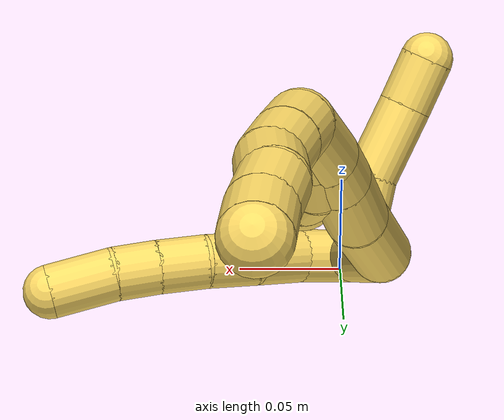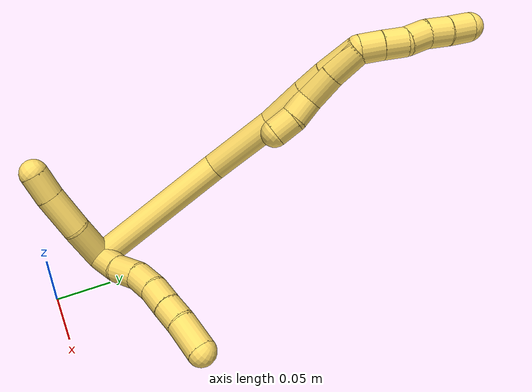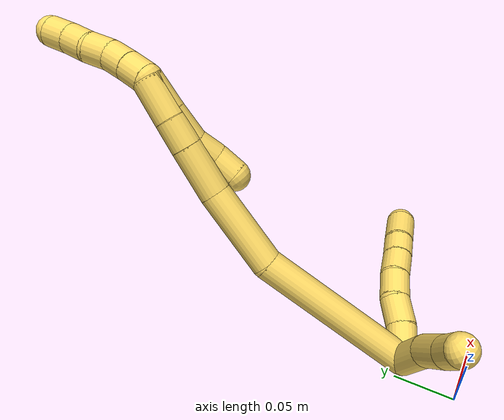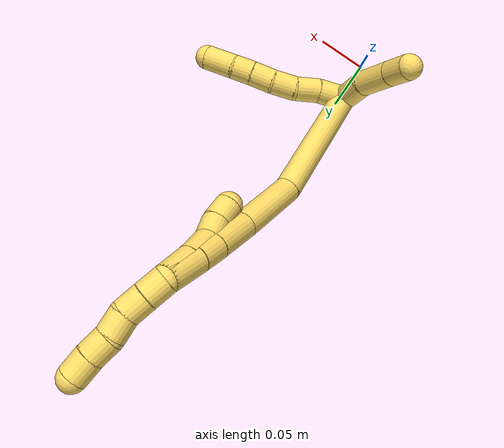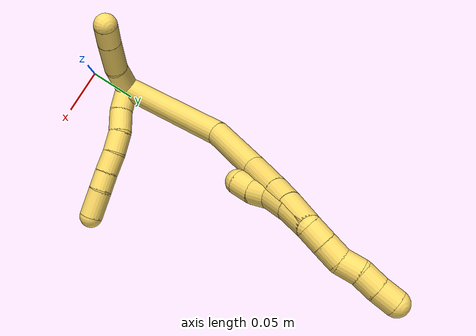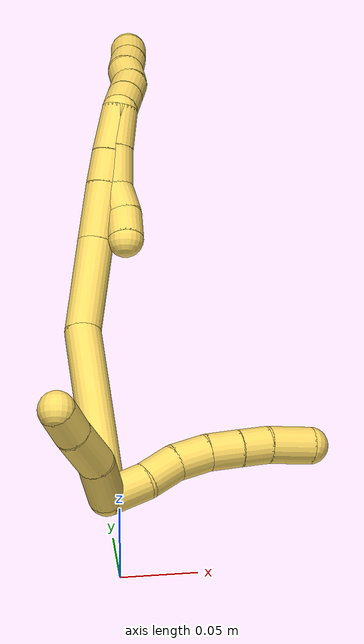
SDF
<sdf version="1.7">
 <world name="default">
  <model name="5">
   <static>0</static>
   <link name="5">
    <collision name="collision-cylinder-e_1_2_8">
     <pose>0.011132 0.006196 0.00616 -0.788342 0.905357 -0.399207</pose>
     <geometry><cylinder><radius>0.0125</radius><length>0.028302</length></cylinder></geometry>
     <surface>
      <friction><ode><mu>1.16</mu><mu2>1.16</mu2><slip1>0</slip1><slip2>0</slip2></ode></friction>
      <contact><ode><kp>1e+06</kp><kd>1</kd><max_vel>0</max_vel><min_depth>0.001</min_depth></ode></contact>
     </surface>
    </collision>
    <visual name="visual-cylinder-e_1_2_8">
     <pose>0.011132 0.006196 0.00616 -0.788342 0.905357 -0.399207</pose>
     <geometry><cylinder><radius>0.0125</radius><length>0.028302</length></cylinder></geometry>
     <material><ambient>1 0.858824 0.4 1</ambient></material>
    </visual>
    <collision name="collision-cylinder-e_2_8_9">
     <pose>0.030228 0.018559 0.019568 -0.70492 0.696823 -0.265632</pose>
     <geometry><cylinder><radius>0.0125</radius><length>0.024819</length></cylinder></geometry>
     <surface>
      <friction><ode><mu>1.16</mu><mu2>1.16</mu2><slip1>0</slip1><slip2>0</slip2></ode></friction>
      <contact><ode><kp>1e+06</kp><kd>1</kd><max_vel>0</max_vel><min_depth>0.001</min_depth></ode></contact>
     </surface>
    </collision>
    <visual name="visual-cylinder-e_2_8_9">
     <pose>0.030228 0.018559 0.019568 -0.70492 0.696823 -0.265632</pose>
     <geometry><cylinder><radius>0.0125</radius><length>0.024819</length></cylinder></geometry>
     <material><ambient>1 0.858824 0.4 1</ambient></material>
    </visual>
    <collision name="collision-cylinder-e_3_9_10">
     <pose>0.047608 0.030478 0.031126 -0.927877 0.918805 -0.485309</pose>
     <geometry><cylinder><radius>0.0125</radius><length>0.023692</length></cylinder></geometry>
     <surface>
      <friction><ode><mu>1.16</mu><mu2>1.16</mu2><slip1>0</slip1><slip2>0</slip2></ode></friction>
      <contact><ode><kp>1e+06</kp><kd>1</kd><max_vel>0</max_vel><min_depth>0.001</min_depth></ode></contact>
     </surface>
    </collision>
    <visual name="visual-cylinder-e_3_9_10">
     <pose>0.047608 0.030478 0.031126 -0.927877 0.918805 -0.485309</pose>
     <geometry><cylinder><radius>0.0125</radius><length>0.023692</length></cylinder></geometry>
     <material><ambient>1 0.858824 0.4 1</ambient></material>
    </visual>
    <collision name="collision-cylinder-e_4_10_11">
     <pose>0.066414 0.041972 0.037748 -1.18788 0.987997 -0.697583</pose>
     <geometry><cylinder><radius>0.0125</radius><length>0.022493</length></cylinder></geometry>
     <surface>
      <friction><ode><mu>1.16</mu><mu2>1.16</mu2><slip1>0</slip1><slip2>0</slip2></ode></friction>
      <contact><ode><kp>1e+06</kp><kd>1</kd><max_vel>0</max_vel><min_depth>0.001</min_depth></ode></contact>
     </surface>
    </collision>
    <visual name="visual-cylinder-e_4_10_11">
     <pose>0.066414 0.041972 0.037748 -1.18788 0.987997 -0.697583</pose>
     <geometry><cylinder><radius>0.0125</radius><length>0.022493</length></cylinder></geometry>
     <material><ambient>1 0.858824 0.4 1</ambient></material>
    </visual>
    <collision name="collision-cylinder-e_5_11_12">
     <pose>0.083975 0.053251 0.042144 -1.21096 0.944079 -0.6794</pose>
     <geometry><cylinder><radius>0.0125</radius><length>0.020174</length></cylinder></geometry>
     <surface>
      <friction><ode><mu>1.16</mu><mu2>1.16</mu2><slip1>0</slip1><slip2>0</slip2></ode></friction>
      <contact><ode><kp>1e+06</kp><kd>1</kd><max_vel>0</max_vel><min_depth>0.001</min_depth></ode></contact>
     </surface>
    </collision>
    <visual name="visual-cylinder-e_5_11_12">
     <pose>0.083975 0.053251 0.042144 -1.21096 0.944079 -0.6794</pose>
     <geometry><cylinder><radius>0.0125</radius><length>0.020174</length></cylinder></geometry>
     <material><ambient>1 0.858824 0.4 1</ambient></material>
    </visual>
    <collision name="collision-cylinder-e_6_12_6">
     <pose>0.104067 0.068214 0.045594 -1.4268 0.896742 -0.789002</pose>
     <geometry><cylinder><radius>0.0125</radius><length>0.03052</length></cylinder></geometry>
     <surface>
      <friction><ode><mu>1.16</mu><mu2>1.16</mu2><slip1>0</slip1><slip2>0</slip2></ode></friction>
      <contact><ode><kp>1e+06</kp><kd>1</kd><max_vel>0</max_vel><min_depth>0.001</min_depth></ode></contact>
     </surface>
    </collision>
    <visual name="visual-cylinder-e_6_12_6">
     <pose>0.104067 0.068214 0.045594 -1.4268 0.896742 -0.789002</pose>
     <geometry><cylinder><radius>0.0125</radius><length>0.03052</length></cylinder></geometry>
     <material><ambient>1 0.858824 0.4 1</ambient></material>
    </visual>
    <collision name="collision-cylinder-e_1_2_13">
     <pose>0.002293 -0.018013 0.006486 1.22517 0.119212 0.083829</pose>
     <geometry><cylinder><radius>0.0125</radius><length>0.038564</length></cylinder></geometry>
     <surface>
      <friction><ode><mu>1.16</mu><mu2>1.16</mu2><slip1>0</slip1><slip2>0</slip2></ode></friction>
      <contact><ode><kp>1e+06</kp><kd>1</kd><max_vel>0</max_vel><min_depth>0.001</min_depth></ode></contact>
     </surface>
    </collision>
    <visual name="visual-cylinder-e_1_2_13">
     <pose>0.002293 -0.018013 0.006486 1.22517 0.119212 0.083829</pose>
     <geometry><cylinder><radius>0.0125</radius><length>0.038564</length></cylinder></geometry>
     <material><ambient>1 0.858824 0.4 1</ambient></material>
    </visual>
    <collision name="collision-cylinder-e_2_13_14">
     <pose>0.002657 -0.053692 0.017868 1.30047 -0.104878 -0.079798</pose>
     <geometry><cylinder><radius>0.0125</radius><length>0.036865</length></cylinder></geometry>
     <surface>
      <friction><ode><mu>1.16</mu><mu2>1.16</mu2><slip1>0</slip1><slip2>0</slip2></ode></friction>
      <contact><ode><kp>1e+06</kp><kd>1</kd><max_vel>0</max_vel><min_depth>0.001</min_depth></ode></contact>
     </surface>
    </collision>
    <visual name="visual-cylinder-e_2_13_14">
     <pose>0.002657 -0.053692 0.017868 1.30047 -0.104878 -0.079798</pose>
     <geometry><cylinder><radius>0.0125</radius><length>0.036865</length></cylinder></geometry>
     <material><ambient>1 0.858824 0.4 1</ambient></material>
    </visual>
    <collision name="collision-cylinder-e_3_14_5">
     <pose>-0.000486 -0.082753 0.027189 1.2003 -0.098946 -0.067744</pose>
     <geometry><cylinder><radius>0.0125</radius><length>0.024571</length></cylinder></geometry>
     <surface>
      <friction><ode><mu>1.16</mu><mu2>1.16</mu2><slip1>0</slip1><slip2>0</slip2></ode></friction>
      <contact><ode><kp>1e+06</kp><kd>1</kd><max_vel>0</max_vel><min_depth>0.001</min_depth></ode></contact>
     </surface>
    </collision>
    <visual name="visual-cylinder-e_3_14_5">
     <pose>-0.000486 -0.082753 0.027189 1.2003 -0.098946 -0.067744</pose>
     <geometry><cylinder><radius>0.0125</radius><length>0.024571</length></cylinder></geometry>
     <material><ambient>1 0.858824 0.4 1</ambient></material>
    </visual>
    <collision name="collision-cylinder-e_1_2_15">
     <pose>-0.014473 0.015049 0.062956 -0.234631 -0.219977 0.026029</pose>
     <geometry><cylinder><radius>0.0125</radius><length>0.132655</length></cylinder></geometry>
     <surface>
      <friction><ode><mu>1.16</mu><mu2>1.16</mu2><slip1>0</slip1><slip2>0</slip2></ode></friction>
      <contact><ode><kp>1e+06</kp><kd>1</kd><max_vel>0</max_vel><min_depth>0.001</min_depth></ode></contact>
     </surface>
    </collision>
    <visual name="visual-cylinder-e_1_2_15">
     <pose>-0.014473 0.015049 0.062956 -0.234631 -0.219977 0.026029</pose>
     <geometry><cylinder><radius>0.0125</radius><length>0.132655</length></cylinder></geometry>
     <material><ambient>1 0.858824 0.4 1</ambient></material>
    </visual>
    <collision name="collision-cylinder-e_2_15_16">
     <pose>-0.026418 0.034523 0.159202 -0.132187 0.075131 -0.004975</pose>
     <geometry><cylinder><radius>0.0125</radius><length>0.067356</length></cylinder></geometry>
     <surface>
      <friction><ode><mu>1.16</mu><mu2>1.16</mu2><slip1>0</slip1><slip2>0</slip2></ode></friction>
      <contact><ode><kp>1e+06</kp><kd>1</kd><max_vel>0</max_vel><min_depth>0.001</min_depth></ode></contact>
     </surface>
    </collision>
    <visual name="visual-cylinder-e_2_15_16">
     <pose>-0.026418 0.034523 0.159202 -0.132187 0.075131 -0.004975</pose>
     <geometry><cylinder><radius>0.0125</radius><length>0.067356</length></cylinder></geometry>
     <material><ambient>1 0.858824 0.4 1</ambient></material>
    </visual>
    <collision name="collision-cylinder-e_3_16_17">
     <pose>-0.021228 0.039361 0.213069 -0.019959 0.12863 -0.001285</pose>
     <geometry><cylinder><radius>0.0125</radius><length>0.041506</length></cylinder></geometry>
     <surface>
      <friction><ode><mu>1.16</mu><mu2>1.16</mu2><slip1>0</slip1><slip2>0</slip2></ode></friction>
      <contact><ode><kp>1e+06</kp><kd>1</kd><max_vel>0</max_vel><min_depth>0.001</min_depth></ode></contact>
     </surface>
    </collision>
    <visual name="visual-cylinder-e_3_16_17">
     <pose>-0.021228 0.039361 0.213069 -0.019959 0.12863 -0.001285</pose>
     <geometry><cylinder><radius>0.0125</radius><length>0.041506</length></cylinder></geometry>
     <material><ambient>1 0.858824 0.4 1</ambient></material>
    </visual>
    <collision name="collision-cylinder-e_4_17_18">
     <pose>-0.016751 0.040247 0.245424 -0.040392 0.152833 -0.003093</pose>
     <geometry><cylinder><radius>0.0125</radius><length>0.023853</length></cylinder></geometry>
     <surface>
      <friction><ode><mu>1.16</mu><mu2>1.16</mu2><slip1>0</slip1><slip2>0</slip2></ode></friction>
      <contact><ode><kp>1e+06</kp><kd>1</kd><max_vel>0</max_vel><min_depth>0.001</min_depth></ode></contact>
     </surface>
    </collision>
    <visual name="visual-cylinder-e_4_17_18">
     <pose>-0.016751 0.040247 0.245424 -0.040392 0.152833 -0.003093</pose>
     <geometry><cylinder><radius>0.0125</radius><length>0.023853</length></cylinder></geometry>
     <material><ambient>1 0.858824 0.4 1</ambient></material>
    </visual>
    <collision name="collision-cylinder-e_5_18_1">
     <pose>-0.011915 0.042278 0.27418 -0.091326 0.175329 -0.008032</pose>
     <geometry><cylinder><radius>0.0125</radius><length>0.03463</length></cylinder></geometry>
     <surface>
      <friction><ode><mu>1.16</mu><mu2>1.16</mu2><slip1>0</slip1><slip2>0</slip2></ode></friction>
      <contact><ode><kp>1e+06</kp><kd>1</kd><max_vel>0</max_vel><min_depth>0.001</min_depth></ode></contact>
     </surface>
    </collision>
    <visual name="visual-cylinder-e_5_18_1">
     <pose>-0.011915 0.042278 0.27418 -0.091326 0.175329 -0.008032</pose>
     <geometry><cylinder><radius>0.0125</radius><length>0.03463</length></cylinder></geometry>
     <material><ambient>1 0.858824 0.4 1</ambient></material>
    </visual>
    <collision name="collision-cylinder-e_1_1_19">
     <pose>-0.01017 0.043175 0.276138 3.0978 -0.08463 -2.18682</pose>
     <geometry><cylinder><radius>0.0125</radius><length>0.030178</length></cylinder></geometry>
     <surface>
      <friction><ode><mu>1.16</mu><mu2>1.16</mu2><slip1>0</slip1><slip2>0</slip2></ode></friction>
      <contact><ode><kp>1e+06</kp><kd>1</kd><max_vel>0</max_vel><min_depth>0.001</min_depth></ode></contact>
     </surface>
    </collision>
    <visual name="visual-cylinder-e_1_1_19">
     <pose>-0.01017 0.043175 0.276138 3.0978 -0.08463 -2.18682</pose>
     <geometry><cylinder><radius>0.0125</radius><length>0.030178</length></cylinder></geometry>
     <material><ambient>1 0.858824 0.4 1</ambient></material>
    </visual>
    <collision name="collision-cylinder-e_2_19_20">
     <pose>-0.011557 0.043047 0.246938 -3.1042 -0.007856 0.414112</pose>
     <geometry><cylinder><radius>0.0125</radius><length>0.028379</length></cylinder></geometry>
     <surface>
      <friction><ode><mu>1.16</mu><mu2>1.16</mu2><slip1>0</slip1><slip2>0</slip2></ode></friction>
      <contact><ode><kp>1e+06</kp><kd>1</kd><max_vel>0</max_vel><min_depth>0.001</min_depth></ode></contact>
     </surface>
    </collision>
    <visual name="visual-cylinder-e_2_19_20">
     <pose>-0.011557 0.043047 0.246938 -3.1042 -0.007856 0.414112</pose>
     <geometry><cylinder><radius>0.0125</radius><length>0.028379</length></cylinder></geometry>
     <material><ambient>1 0.858824 0.4 1</ambient></material>
    </visual>
    <collision name="collision-cylinder-e_3_20_21">
     <pose>-0.008362 0.043487 0.222793 3.13252 0.320299 3.08543</pose>
     <geometry><cylinder><radius>0.0125</radius><length>0.021</length></cylinder></geometry>
     <surface>
      <friction><ode><mu>1.16</mu><mu2>1.16</mu2><slip1>0</slip1><slip2>0</slip2></ode></friction>
      <contact><ode><kp>1e+06</kp><kd>1</kd><max_vel>0</max_vel><min_depth>0.001</min_depth></ode></contact>
     </surface>
    </collision>
    <visual name="visual-cylinder-e_3_20_21">
     <pose>-0.008362 0.043487 0.222793 3.13252 0.320299 3.08543</pose>
     <geometry><cylinder><radius>0.0125</radius><length>0.021</length></cylinder></geometry>
     <material><ambient>1 0.858824 0.4 1</ambient></material>
    </visual>
    <collision name="collision-cylinder-e_4_21_4">
     <pose>-0.003601 0.041382 0.202913 2.9411 0.142836 1.23649</pose>
     <geometry><cylinder><radius>0.0125</radius><length>0.020442</length></cylinder></geometry>
     <surface>
      <friction><ode><mu>1.16</mu><mu2>1.16</mu2><slip1>0</slip1><slip2>0</slip2></ode></friction>
      <contact><ode><kp>1e+06</kp><kd>1</kd><max_vel>0</max_vel><min_depth>0.001</min_depth></ode></contact>
     </surface>
    </collision>
    <visual name="visual-cylinder-e_4_21_4">
     <pose>-0.003601 0.041382 0.202913 2.9411 0.142836 1.23649</pose>
     <geometry><cylinder><radius>0.0125</radius><length>0.020442</length></cylinder></geometry>
     <material><ambient>1 0.858824 0.4 1</ambient></material>
    </visual>
    <collision name="collision-cylinder-e_1_1_22">
     <pose>-0.009261 0.050189 0.298871 -0.689284 -0.036671 0.013165</pose>
     <geometry><cylinder><radius>0.0125</radius><length>0.02</length></cylinder></geometry>
     <surface>
      <friction><ode><mu>1.16</mu><mu2>1.16</mu2><slip1>0</slip1><slip2>0</slip2></ode></friction>
      <contact><ode><kp>1e+06</kp><kd>1</kd><max_vel>0</max_vel><min_depth>0.001</min_depth></ode></contact>
     </surface>
    </collision>
    <visual name="visual-cylinder-e_1_1_22">
     <pose>-0.009261 0.050189 0.298871 -0.689284 -0.036671 0.013165</pose>
     <geometry><cylinder><radius>0.0125</radius><length>0.02</length></cylinder></geometry>
     <material><ambient>1 0.858824 0.4 1</ambient></material>
    </visual>
    <collision name="collision-cylinder-e_2_22_23">
     <pose>-0.010176 0.06319 0.314035 -0.728246 -0.054849 0.020908</pose>
     <geometry><cylinder><radius>0.0125</radius><length>0.02</length></cylinder></geometry>
     <surface>
      <friction><ode><mu>1.16</mu><mu2>1.16</mu2><slip1>0</slip1><slip2>0</slip2></ode></friction>
      <contact><ode><kp>1e+06</kp><kd>1</kd><max_vel>0</max_vel><min_depth>0.001</min_depth></ode></contact>
     </surface>
    </collision>
    <visual name="visual-cylinder-e_2_22_23">
     <pose>-0.010176 0.06319 0.314035 -0.728246 -0.054849 0.020908</pose>
     <geometry><cylinder><radius>0.0125</radius><length>0.02</length></cylinder></geometry>
     <material><ambient>1 0.858824 0.4 1</ambient></material>
    </visual>
    <collision name="collision-cylinder-e_3_23_24">
     <pose>-0.014083 0.075217 0.329217 -0.60816 -0.342545 0.108452</pose>
     <geometry><cylinder><radius>0.0125</radius><length>0.02</length></cylinder></geometry>
     <surface>
      <friction><ode><mu>1.16</mu><mu2>1.16</mu2><slip1>0</slip1><slip2>0</slip2></ode></friction>
      <contact><ode><kp>1e+06</kp><kd>1</kd><max_vel>0</max_vel><min_depth>0.001</min_depth></ode></contact>
     </surface>
    </collision>
    <visual name="visual-cylinder-e_3_23_24">
     <pose>-0.014083 0.075217 0.329217 -0.60816 -0.342545 0.108452</pose>
     <geometry><cylinder><radius>0.0125</radius><length>0.02</length></cylinder></geometry>
     <material><ambient>1 0.858824 0.4 1</ambient></material>
    </visual>
    <collision name="collision-cylinder-e_4_24_25">
     <pose>-0.018777 0.087513 0.344047 -0.772131 -0.133925 0.054503</pose>
     <geometry><cylinder><radius>0.0125</radius><length>0.02</length></cylinder></geometry>
     <surface>
      <friction><ode><mu>1.16</mu><mu2>1.16</mu2><slip1>0</slip1><slip2>0</slip2></ode></friction>
      <contact><ode><kp>1e+06</kp><kd>1</kd><max_vel>0</max_vel><min_depth>0.001</min_depth></ode></contact>
     </surface>
    </collision>
    <visual name="visual-cylinder-e_4_24_25">
     <pose>-0.018777 0.087513 0.344047 -0.772131 -0.133925 0.054503</pose>
     <geometry><cylinder><radius>0.0125</radius><length>0.02</length></cylinder></geometry>
     <material><ambient>1 0.858824 0.4 1</ambient></material>
    </visual>
    <collision name="collision-cylinder-e_5_25_3">
     <pose>-0.022362 0.101031 0.358312 -0.744762 -0.22693 0.088964</pose>
     <geometry><cylinder><radius>0.0125</radius><length>0.02</length></cylinder></geometry>
     <surface>
      <friction><ode><mu>1.16</mu><mu2>1.16</mu2><slip1>0</slip1><slip2>0</slip2></ode></friction>
      <contact><ode><kp>1e+06</kp><kd>1</kd><max_vel>0</max_vel><min_depth>0.001</min_depth></ode></contact>
     </surface>
    </collision>
    <visual name="visual-cylinder-e_5_25_3">
     <pose>-0.022362 0.101031 0.358312 -0.744762 -0.22693 0.088964</pose>
     <geometry><cylinder><radius>0.0125</radius><length>0.02</length></cylinder></geometry>
     <material><ambient>1 0.858824 0.4 1</ambient></material>
    </visual>
    <collision name="collision-sphere-3">
     <pose>-0.024612 0.107635 0.365476 0 -0 0</pose>
     <geometry><sphere><radius>0.0125</radius></sphere></geometry>
     <surface>
      <friction><ode><mu>1.16</mu><mu2>1.16</mu2><slip1>0</slip1><slip2>0</slip2></ode></friction>
      <contact><ode><kp>1e+06</kp><kd>1</kd><max_vel>0</max_vel><min_depth>0.001</min_depth></ode></contact>
     </surface>
    </collision>
    <visual name="visual-sphere-3">
     <pose>-0.024612 0.107635 0.365476 0 -0 0</pose>
     <geometry><sphere><radius>0.0125</radius></sphere></geometry>
     <material><ambient>1 0.858824 0.4 1</ambient></material>
    </visual>
    <collision name="collision-sphere-25">
     <pose>-0.020112 0.094427 0.351148 0 -0 0</pose>
     <geometry><sphere><radius>0.0125</radius></sphere></geometry>
     <surface>
      <friction><ode><mu>1.16</mu><mu2>1.16</mu2><slip1>0</slip1><slip2>0</slip2></ode></friction>
      <contact><ode><kp>1e+06</kp><kd>1</kd><max_vel>0</max_vel><min_depth>0.001</min_depth></ode></contact>
     </surface>
    </collision>
    <visual name="visual-sphere-25">
     <pose>-0.020112 0.094427 0.351148 0 -0 0</pose>
     <geometry><sphere><radius>0.0125</radius></sphere></geometry>
     <material><ambient>1 0.858824 0.4 1</ambient></material>
    </visual>
    <collision name="collision-sphere-24">
     <pose>-0.017442 0.080599 0.336947 0 -0 0</pose>
     <geometry><sphere><radius>0.0125</radius></sphere></geometry>
     <surface>
      <friction><ode><mu>1.16</mu><mu2>1.16</mu2><slip1>0</slip1><slip2>0</slip2></ode></friction>
      <contact><ode><kp>1e+06</kp><kd>1</kd><max_vel>0</max_vel><min_depth>0.001</min_depth></ode></contact>
     </surface>
    </collision>
    <visual name="visual-sphere-24">
     <pose>-0.017442 0.080599 0.336947 0 -0 0</pose>
     <geometry><sphere><radius>0.0125</radius></sphere></geometry>
     <material><ambient>1 0.858824 0.4 1</ambient></material>
    </visual>
    <collision name="collision-sphere-23">
     <pose>-0.010724 0.069835 0.321487 0 -0 0</pose>
     <geometry><sphere><radius>0.0125</radius></sphere></geometry>
     <surface>
      <friction><ode><mu>1.16</mu><mu2>1.16</mu2><slip1>0</slip1><slip2>0</slip2></ode></friction>
      <contact><ode><kp>1e+06</kp><kd>1</kd><max_vel>0</max_vel><min_depth>0.001</min_depth></ode></contact>
     </surface>
    </collision>
    <visual name="visual-sphere-23">
     <pose>-0.010724 0.069835 0.321487 0 -0 0</pose>
     <geometry><sphere><radius>0.0125</radius></sphere></geometry>
     <material><ambient>1 0.858824 0.4 1</ambient></material>
    </visual>
    <collision name="collision-sphere-22">
     <pose>-0.009628 0.056544 0.306583 0 -0 0</pose>
     <geometry><sphere><radius>0.0125</radius></sphere></geometry>
     <surface>
      <friction><ode><mu>1.16</mu><mu2>1.16</mu2><slip1>0</slip1><slip2>0</slip2></ode></friction>
      <contact><ode><kp>1e+06</kp><kd>1</kd><max_vel>0</max_vel><min_depth>0.001</min_depth></ode></contact>
     </surface>
    </collision>
    <visual name="visual-sphere-22">
     <pose>-0.009628 0.056544 0.306583 0 -0 0</pose>
     <geometry><sphere><radius>0.0125</radius></sphere></geometry>
     <material><ambient>1 0.858824 0.4 1</ambient></material>
    </visual>
    <collision name="collision-sphere-4">
     <pose>-0.002146 0.039367 0.192999 0 -0 0</pose>
     <geometry><sphere><radius>0.0125</radius></sphere></geometry>
     <surface>
      <friction><ode><mu>1.16</mu><mu2>1.16</mu2><slip1>0</slip1><slip2>0</slip2></ode></friction>
      <contact><ode><kp>1e+06</kp><kd>1</kd><max_vel>0</max_vel><min_depth>0.001</min_depth></ode></contact>
     </surface>
    </collision>
    <visual name="visual-sphere-4">
     <pose>-0.002146 0.039367 0.192999 0 -0 0</pose>
     <geometry><sphere><radius>0.0125</radius></sphere></geometry>
     <material><ambient>1 0.858824 0.4 1</ambient></material>
    </visual>
    <collision name="collision-sphere-21">
     <pose>-0.005056 0.043397 0.212827 0 -0 0</pose>
     <geometry><sphere><radius>0.0125</radius></sphere></geometry>
     <surface>
      <friction><ode><mu>1.16</mu><mu2>1.16</mu2><slip1>0</slip1><slip2>0</slip2></ode></friction>
      <contact><ode><kp>1e+06</kp><kd>1</kd><max_vel>0</max_vel><min_depth>0.001</min_depth></ode></contact>
     </surface>
    </collision>
    <visual name="visual-sphere-21">
     <pose>-0.005056 0.043397 0.212827 0 -0 0</pose>
     <geometry><sphere><radius>0.0125</radius></sphere></geometry>
     <material><ambient>1 0.858824 0.4 1</ambient></material>
    </visual>
    <collision name="collision-sphere-20">
     <pose>-0.011668 0.043577 0.232759 0 -0 0</pose>
     <geometry><sphere><radius>0.0125</radius></sphere></geometry>
     <surface>
      <friction><ode><mu>1.16</mu><mu2>1.16</mu2><slip1>0</slip1><slip2>0</slip2></ode></friction>
      <contact><ode><kp>1e+06</kp><kd>1</kd><max_vel>0</max_vel><min_depth>0.001</min_depth></ode></contact>
     </surface>
    </collision>
    <visual name="visual-sphere-20">
     <pose>-0.011668 0.043577 0.232759 0 -0 0</pose>
     <geometry><sphere><radius>0.0125</radius></sphere></geometry>
     <material><ambient>1 0.858824 0.4 1</ambient></material>
    </visual>
    <collision name="collision-sphere-12">
     <pose>0.092145 0.058788 0.044227 0 -0 0</pose>
     <geometry><sphere><radius>0.0125</radius></sphere></geometry>
     <surface>
      <friction><ode><mu>1.16</mu><mu2>1.16</mu2><slip1>0</slip1><slip2>0</slip2></ode></friction>
      <contact><ode><kp>1e+06</kp><kd>1</kd><max_vel>0</max_vel><min_depth>0.001</min_depth></ode></contact>
     </surface>
    </collision>
    <visual name="visual-sphere-12">
     <pose>0.092145 0.058788 0.044227 0 -0 0</pose>
     <geometry><sphere><radius>0.0125</radius></sphere></geometry>
     <material><ambient>1 0.858824 0.4 1</ambient></material>
    </visual>
    <collision name="collision-sphere-11">
     <pose>0.075805 0.047714 0.040061 0 -0 0</pose>
     <geometry><sphere><radius>0.0125</radius></sphere></geometry>
     <surface>
      <friction><ode><mu>1.16</mu><mu2>1.16</mu2><slip1>0</slip1><slip2>0</slip2></ode></friction>
      <contact><ode><kp>1e+06</kp><kd>1</kd><max_vel>0</max_vel><min_depth>0.001</min_depth></ode></contact>
     </surface>
    </collision>
    <visual name="visual-sphere-11">
     <pose>0.075805 0.047714 0.040061 0 -0 0</pose>
     <geometry><sphere><radius>0.0125</radius></sphere></geometry>
     <material><ambient>1 0.858824 0.4 1</ambient></material>
    </visual>
    <collision name="collision-sphere-10">
     <pose>0.057024 0.036231 0.035435 0 -0 0</pose>
     <geometry><sphere><radius>0.0125</radius></sphere></geometry>
     <surface>
      <friction><ode><mu>1.16</mu><mu2>1.16</mu2><slip1>0</slip1><slip2>0</slip2></ode></friction>
      <contact><ode><kp>1e+06</kp><kd>1</kd><max_vel>0</max_vel><min_depth>0.001</min_depth></ode></contact>
     </surface>
    </collision>
    <visual name="visual-sphere-10">
     <pose>0.057024 0.036231 0.035435 0 -0 0</pose>
     <geometry><sphere><radius>0.0125</radius></sphere></geometry>
     <material><ambient>1 0.858824 0.4 1</ambient></material>
    </visual>
    <collision name="collision-sphere-9">
     <pose>0.038192 0.024725 0.026817 0 -0 0</pose>
     <geometry><sphere><radius>0.0125</radius></sphere></geometry>
     <surface>
      <friction><ode><mu>1.16</mu><mu2>1.16</mu2><slip1>0</slip1><slip2>0</slip2></ode></friction>
      <contact><ode><kp>1e+06</kp><kd>1</kd><max_vel>0</max_vel><min_depth>0.001</min_depth></ode></contact>
     </surface>
    </collision>
    <visual name="visual-sphere-9">
     <pose>0.038192 0.024725 0.026817 0 -0 0</pose>
     <geometry><sphere><radius>0.0125</radius></sphere></geometry>
     <material><ambient>1 0.858824 0.4 1</ambient></material>
    </visual>
    <collision name="collision-sphere-2">
     <geometry><sphere><radius>0.0125</radius></sphere></geometry>
     <surface>
      <friction><ode><mu>1.16</mu><mu2>1.16</mu2><slip1>0</slip1><slip2>0</slip2></ode></friction>
      <contact><ode><kp>1e+06</kp><kd>1</kd><max_vel>0</max_vel><min_depth>0.001</min_depth></ode></contact>
     </surface>
    </collision>
    <visual name="visual-sphere-2">
     <geometry><sphere><radius>0.0125</radius></sphere></geometry>
     <material><ambient>1 0.858824 0.4 1</ambient></material>
    </visual>
    <collision name="collision-sphere-19">
     <pose>-0.011445 0.042516 0.261117 0 -0 0</pose>
     <geometry><sphere><radius>0.0125</radius></sphere></geometry>
     <surface>
      <friction><ode><mu>1.16</mu><mu2>1.16</mu2><slip1>0</slip1><slip2>0</slip2></ode></friction>
      <contact><ode><kp>1e+06</kp><kd>1</kd><max_vel>0</max_vel><min_depth>0.001</min_depth></ode></contact>
     </surface>
    </collision>
    <visual name="visual-sphere-19">
     <pose>-0.011445 0.042516 0.261117 0 -0 0</pose>
     <geometry><sphere><radius>0.0125</radius></sphere></geometry>
     <material><ambient>1 0.858824 0.4 1</ambient></material>
    </visual>
    <collision name="collision-sphere-8">
     <pose>0.022264 0.012392 0.012319 0 -0 0</pose>
     <geometry><sphere><radius>0.0125</radius></sphere></geometry>
     <surface>
      <friction><ode><mu>1.16</mu><mu2>1.16</mu2><slip1>0</slip1><slip2>0</slip2></ode></friction>
      <contact><ode><kp>1e+06</kp><kd>1</kd><max_vel>0</max_vel><min_depth>0.001</min_depth></ode></contact>
     </surface>
    </collision>
    <visual name="visual-sphere-8">
     <pose>0.022264 0.012392 0.012319 0 -0 0</pose>
     <geometry><sphere><radius>0.0125</radius></sphere></geometry>
     <material><ambient>1 0.858824 0.4 1</ambient></material>
    </visual>
    <collision name="collision-sphere-6">
     <pose>0.11599 0.07764 0.04696 0 -0 0</pose>
     <geometry><sphere><radius>0.0125</radius></sphere></geometry>
     <surface>
      <friction><ode><mu>1.16</mu><mu2>1.16</mu2><slip1>0</slip1><slip2>0</slip2></ode></friction>
      <contact><ode><kp>1e+06</kp><kd>1</kd><max_vel>0</max_vel><min_depth>0.001</min_depth></ode></contact>
     </surface>
    </collision>
    <visual name="visual-sphere-6">
     <pose>0.11599 0.07764 0.04696 0 -0 0</pose>
     <geometry><sphere><radius>0.0125</radius></sphere></geometry>
     <material><ambient>1 0.858824 0.4 1</ambient></material>
    </visual>
    <collision name="collision-sphere-13">
     <pose>0.004586 -0.036026 0.012972 0 -0 0</pose>
     <geometry><sphere><radius>0.0125</radius></sphere></geometry>
     <surface>
      <friction><ode><mu>1.16</mu><mu2>1.16</mu2><slip1>0</slip1><slip2>0</slip2></ode></friction>
      <contact><ode><kp>1e+06</kp><kd>1</kd><max_vel>0</max_vel><min_depth>0.001</min_depth></ode></contact>
     </surface>
    </collision>
    <visual name="visual-sphere-13">
     <pose>0.004586 -0.036026 0.012972 0 -0 0</pose>
     <geometry><sphere><radius>0.0125</radius></sphere></geometry>
     <material><ambient>1 0.858824 0.4 1</ambient></material>
    </visual>
    <collision name="collision-sphere-14">
     <pose>0.000727 -0.071357 0.022763 0 -0 0</pose>
     <geometry><sphere><radius>0.0125</radius></sphere></geometry>
     <surface>
      <friction><ode><mu>1.16</mu><mu2>1.16</mu2><slip1>0</slip1><slip2>0</slip2></ode></friction>
      <contact><ode><kp>1e+06</kp><kd>1</kd><max_vel>0</max_vel><min_depth>0.001</min_depth></ode></contact>
     </surface>
    </collision>
    <visual name="visual-sphere-14">
     <pose>0.000727 -0.071357 0.022763 0 -0 0</pose>
     <geometry><sphere><radius>0.0125</radius></sphere></geometry>
     <material><ambient>1 0.858824 0.4 1</ambient></material>
    </visual>
    <collision name="collision-sphere-5">
     <pose>-0.0017 -0.094149 0.031616 0 -0 0</pose>
     <geometry><sphere><radius>0.0125</radius></sphere></geometry>
     <surface>
      <friction><ode><mu>1.16</mu><mu2>1.16</mu2><slip1>0</slip1><slip2>0</slip2></ode></friction>
      <contact><ode><kp>1e+06</kp><kd>1</kd><max_vel>0</max_vel><min_depth>0.001</min_depth></ode></contact>
     </surface>
    </collision>
    <visual name="visual-sphere-5">
     <pose>-0.0017 -0.094149 0.031616 0 -0 0</pose>
     <geometry><sphere><radius>0.0125</radius></sphere></geometry>
     <material><ambient>1 0.858824 0.4 1</ambient></material>
    </visual>
    <collision name="collision-sphere-15">
     <pose>-0.028946 0.030097 0.125912 0 -0 0</pose>
     <geometry><sphere><radius>0.0125</radius></sphere></geometry>
     <surface>
      <friction><ode><mu>1.16</mu><mu2>1.16</mu2><slip1>0</slip1><slip2>0</slip2></ode></friction>
      <contact><ode><kp>1e+06</kp><kd>1</kd><max_vel>0</max_vel><min_depth>0.001</min_depth></ode></contact>
     </surface>
    </collision>
    <visual name="visual-sphere-15">
     <pose>-0.028946 0.030097 0.125912 0 -0 0</pose>
     <geometry><sphere><radius>0.0125</radius></sphere></geometry>
     <material><ambient>1 0.858824 0.4 1</ambient></material>
    </visual>
    <collision name="collision-sphere-16">
     <pose>-0.02389 0.03895 0.192492 0 -0 0</pose>
     <geometry><sphere><radius>0.0125</radius></sphere></geometry>
     <surface>
      <friction><ode><mu>1.16</mu><mu2>1.16</mu2><slip1>0</slip1><slip2>0</slip2></ode></friction>
      <contact><ode><kp>1e+06</kp><kd>1</kd><max_vel>0</max_vel><min_depth>0.001</min_depth></ode></contact>
     </surface>
    </collision>
    <visual name="visual-sphere-16">
     <pose>-0.02389 0.03895 0.192492 0 -0 0</pose>
     <geometry><sphere><radius>0.0125</radius></sphere></geometry>
     <material><ambient>1 0.858824 0.4 1</ambient></material>
    </visual>
    <collision name="collision-sphere-17">
     <pose>-0.018566 0.039771 0.233647 0 -0 0</pose>
     <geometry><sphere><radius>0.0125</radius></sphere></geometry>
     <surface>
      <friction><ode><mu>1.16</mu><mu2>1.16</mu2><slip1>0</slip1><slip2>0</slip2></ode></friction>
      <contact><ode><kp>1e+06</kp><kd>1</kd><max_vel>0</max_vel><min_depth>0.001</min_depth></ode></contact>
     </surface>
    </collision>
    <visual name="visual-sphere-17">
     <pose>-0.018566 0.039771 0.233647 0 -0 0</pose>
     <geometry><sphere><radius>0.0125</radius></sphere></geometry>
     <material><ambient>1 0.858824 0.4 1</ambient></material>
    </visual>
    <collision name="collision-sphere-18">
     <pose>-0.014935 0.040723 0.257202 0 -0 0</pose>
     <geometry><sphere><radius>0.0125</radius></sphere></geometry>
     <surface>
      <friction><ode><mu>1.16</mu><mu2>1.16</mu2><slip1>0</slip1><slip2>0</slip2></ode></friction>
      <contact><ode><kp>1e+06</kp><kd>1</kd><max_vel>0</max_vel><min_depth>0.001</min_depth></ode></contact>
     </surface>
    </collision>
    <visual name="visual-sphere-18">
     <pose>-0.014935 0.040723 0.257202 0 -0 0</pose>
     <geometry><sphere><radius>0.0125</radius></sphere></geometry>
     <material><ambient>1 0.858824 0.4 1</ambient></material>
    </visual>
    <collision name="collision-sphere-1">
     <pose>-0.008894 0.043833 0.291159 0 -0 0</pose>
     <geometry><sphere><radius>0.0125</radius></sphere></geometry>
     <surface>
      <friction><ode><mu>1.16</mu><mu2>1.16</mu2><slip1>0</slip1><slip2>0</slip2></ode></friction>
      <contact><ode><kp>1e+06</kp><kd>1</kd><max_vel>0</max_vel><min_depth>0.001</min_depth></ode></contact>
     </surface>
    </collision>
    <visual name="visual-sphere-1">
     <pose>-0.008894 0.043833 0.291159 0 -0 0</pose>
     <geometry><sphere><radius>0.0125</radius></sphere></geometry>
     <material><ambient>1 0.858824 0.4 1</ambient></material>
    </visual>
    <inertial>
     <pose>0.001282 0.027943 0.141853 0 -0 0</pose>
     <mass>0.75</mass>
     <inertia><ixx>0.000274</ixx><ixy>0</ixy><ixz>0</ixz><iyy>0.000266</iyy><iyz>0</iyz><izz>8e-06</izz></inertia>
    </inertial>
   </link>
   <pose>-0.004097 0.046994 0.03284 -0.754261 -0.20849 -0.334818</pose>
  </model>
 </world>
</sdf>
